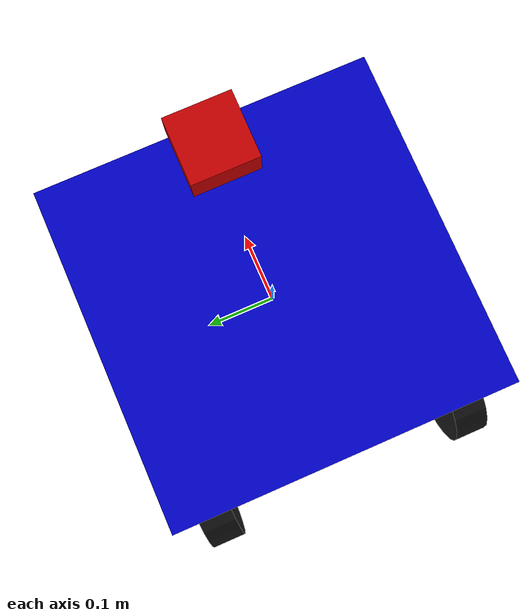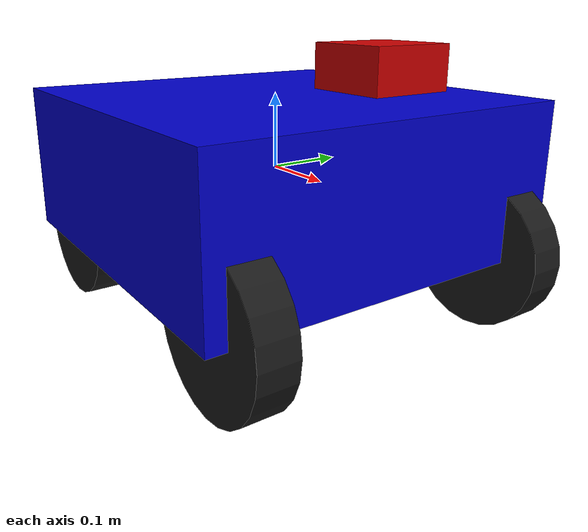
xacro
<?xml version="1.0"?>
<robot xmlns:xacro="http://www.ros.org/wiki/xacro" name="warehouse_robot">

  <!-- Define constants -->
  <xacro:property name="PI" value="3.1415926535897931"/>

  <!-- Base Link -->
  <link name="base_link">
    <visual>
      <geometry>
        <box size="0.5 0.5 0.2"/>
      </geometry>
      <material name="blue">
        <color rgba="0 0 0.8 1"/>
      </material>
    </visual>
    <collision>
      <geometry>
        <box size="0.5 0.5 0.2"/>
      </geometry>
    </collision>
    <inertial>
      <mass value="5.0"/>
      <inertia ixx="0.1" ixy="0" ixz="0" iyy="0.1" iyz="0" izz="0.1"/>
    </inertial>
  </link>

  <!-- Wheels -->
  <xacro:macro name="wheel" params="name x y">
    <link name="${name}_wheel">
      <visual>
        <geometry>
          <cylinder radius="0.1" length="0.05"/>
        </geometry>
        <material name="black">
          <color rgba="0.1 0.1 0.1 1"/>
        </material>
      </visual>
      <collision>
        <geometry>
          <cylinder radius="0.1" length="0.05"/>
        </geometry>
      </collision>
      <inertial>
        <mass value="1.0"/>
        <inertia ixx="0.01" ixy="0" ixz="0" iyy="0.01" iyz="0" izz="0.01"/>
      </inertial>
    </link>

    <joint name="${name}_wheel_joint" type="continuous">
      <parent link="base_link"/>
      <child link="${name}_wheel"/>
      <origin xyz="${x} ${y} -0.1" rpy="${PI/2} 0 0"/>
      <axis xyz="0 0 1"/>
    </joint>
  </xacro:macro>

  <xacro:wheel name="front_left" x="0.2" y="0.2"/>
  <xacro:wheel name="front_right" x="0.2" y="-0.2"/>
  <xacro:wheel name="rear_left" x="-0.2" y="0.2"/>
  <xacro:wheel name="rear_right" x="-0.2" y="-0.2"/>

  <!-- RFID Sensor -->
  <link name="rfid_sensor">
    <visual>
      <geometry>
        <box size="0.1 0.1 0.05"/>
      </geometry>
      <material name="red">
        <color rgba="0.8 0 0 1"/>
      </material>
    </visual>
    <collision>
      <geometry>
        <box size="0.1 0.1 0.05"/>
      </geometry>
    </collision>
    <inertial>
      <mass value="0.1"/>
      <inertia ixx="0.001" ixy="0" ixz="0" iyy="0.001" iyz="0" izz="0.001"/>
    </inertial>
  </link>

  <joint name="rfid_sensor_joint" type="fixed">
    <parent link="base_link"/>
    <child link="rfid_sensor"/>
    <origin xyz="0.2 0 0.15" rpy="0 0 0"/>
  </joint>

  <!-- Gazebo-specific elements -->
  <gazebo>
    <!-- Differential drive plugin -->
    <plugin filename="gz-sim-diff-drive-system" name="gz::sim::systems::DiffDrive">
      <left_joint>front_left_wheel_joint</left_joint>
      <left_joint>rear_left_wheel_joint</left_joint>
      <right_joint>front_right_wheel_joint</right_joint>
      <right_joint>rear_right_wheel_joint</right_joint>
      <wheel_separation>0.4</wheel_separation>
      <wheel_radius>0.1</wheel_radius>
      <odom_publish_frequency>50</odom_publish_frequency>
      <topic>cmd_vel</topic>
    </plugin>
  </gazebo>

  <!-- Add the dummy sensor plugin to the RFID sensor link -->
  <gazebo reference="rfid_sensor">
    <sensor name="rfid_sensor" type="custom">
      <plugin filename="libdummy_sensor.so" name="my_rfid_demo::DummySensor">
        <topic>/dummy_sensor</topic>
      </plugin>
    </sensor>
  </gazebo>
</robot>
